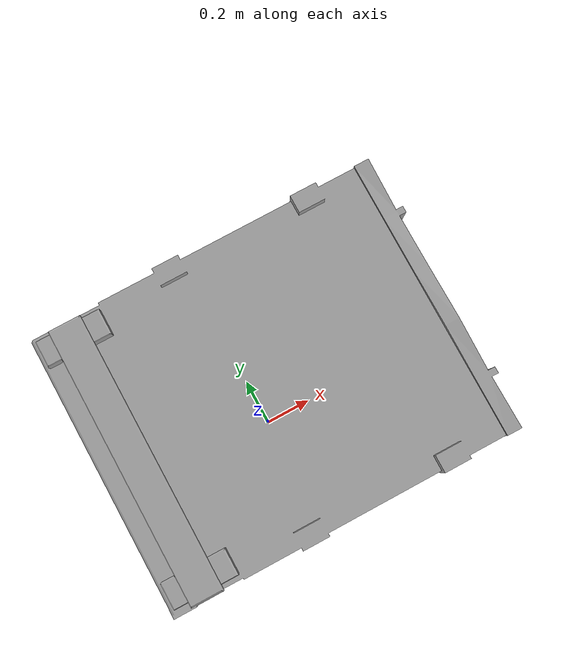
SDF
<?xml version="1.0" ?>
<sdf version="1.5">
  <model name="BoxWithPallet">
    <static>true</static>
    <link name="link">
      <collision name="collision">
        <geometry>
          <mesh>
            <uri>model://boxpallet/meshes/boxpallet.dae</uri>
          </mesh>
        </geometry>
      </collision>
      <visual name="visual">
        <geometry>
          <mesh>
            <uri>model://boxpallet/meshes/boxpallet.dae</uri>
          </mesh>
        </geometry>
      </visual>
    </link>
  </model>
</sdf>
